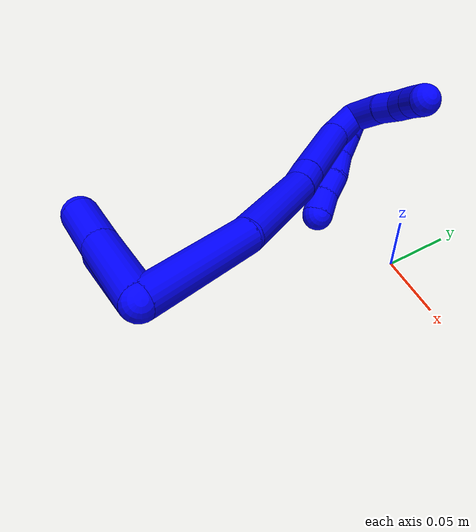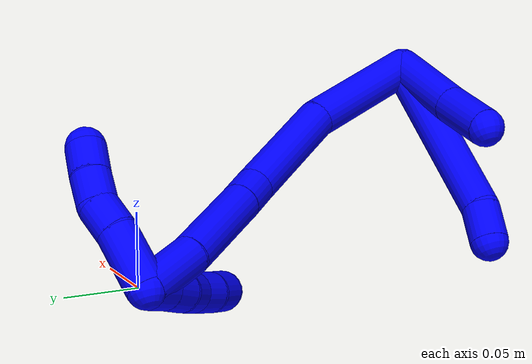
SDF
<sdf version="1.7">
 <world name="default">
  <model name="photoneo_s_sensor">
   <static>1</static>
   <pose>0 0 2 1.57079 1.57079 3.14159</pose>
   <link name="link">
    <inertial><mass>0.1</mass></inertial>
    <sensor name="sensor" type="depth">
     <update_rate>30</update_rate>
     <camera>
      <horizontal_fov>1.22</horizontal_fov>
      <image><width>1920</width><height>1200</height><format>B8G8R8</format></image>
      <clip><near>0.1</near><far>4</far></clip>
      <depth_camera><output>points</output></depth_camera>
     </camera>
     <plugin name="camera_plugin" filename="libgazebo_ros_depth_camera.so">
      <baseline>0.2</baseline>
      <alwaysOn>1</alwaysOn>
      <updateRate>0.0</updateRate>
      <cameraName>camera_ir</cameraName>
      <imageTopicName>/camera/color/image_raw</imageTopicName>
      <cameraInfoTopicName>/camera/color/camera_info</cameraInfoTopicName>
      <depthImageTopicName>/camera/depth/image_raw</depthImageTopicName>
      <depthImageCameraInfoTopicName>/camera/depth/camera_info</depthImageCameraInfoTopicName>
      <pointCloudTopicName>/camera/depth/points</pointCloudTopicName>
      <frameName>fr_optical</frameName>
      <pointCloudCutoff>0.1</pointCloudCutoff>
      <pointCloudCutoffMax>2.0</pointCloudCutoffMax>
      <distortionK1>0</distortionK1>
      <distortionK2>0</distortionK2>
      <distortionK3>0</distortionK3>
      <distortionT1>0</distortionT1>
      <distortionT2>0</distortionT2>
      <CxPrime>0</CxPrime>
      <Cx>0</Cx>
      <Cy>0</Cy>
      <focalLength>0</focalLength>
      <hackBaseline>0</hackBaseline>
     </plugin>
    </sensor>
   </link>
  </model>
  <model name="bin">
   <static>1</static>
   <link name="bottom">
    <collision name="collision-bottom">
     <pose>0 0 -0.01 0 -0 0</pose>
     <geometry><box><size>0.8 0.6 0.02</size></box></geometry>
     <surface>
      <friction><ode><mu>100</mu><mu2>100</mu2></ode></friction>
      <contact><collide_bitmask>65535</collide_bitmask></contact>
     </surface>
    </collision>
   </link>
   <link name="west_wall">
    <collision name="collision-west_wall">
     <pose>-0.41 0 0.1 0 -0 0</pose>
     <geometry><box><size>0.02 0.6 0.2</size></box></geometry>
     <surface>
      <friction><ode><mu>100</mu><mu2>100</mu2></ode></friction>
      <contact><collide_bitmask>65535</collide_bitmask></contact>
     </surface>
    </collision>
   </link>
   <link name="east_wall">
    <collision name="collision-east_wall">
     <pose>0.41 0 0.1 0 -0 0</pose>
     <geometry><box><size>0.02 0.6 0.2</size></box></geometry>
     <surface>
      <friction><ode><mu>100</mu><mu2>100</mu2></ode></friction>
      <contact><collide_bitmask>65535</collide_bitmask></contact>
     </surface>
    </collision>
   </link>
   <link name="south_wall">
    <collision name="collision-south_wall">
     <pose>0 -0.31 0.1 0 -0 0</pose>
     <geometry><box><size>0.8 0.02 0.2</size></box></geometry>
     <surface>
      <friction><ode><mu>100</mu><mu2>100</mu2></ode></friction>
      <contact><collide_bitmask>65535</collide_bitmask></contact>
     </surface>
    </collision>
   </link>
   <link name="north_wall">
    <collision name="collision-north_wall">
     <pose>0 0.31 0.1 0 -0 0</pose>
     <geometry><box><size>0.8 0.02 0.2</size></box></geometry>
     <surface>
      <friction><ode><mu>100</mu><mu2>100</mu2></ode></friction>
      <contact><collide_bitmask>65535</collide_bitmask></contact>
     </surface>
    </collision>
   </link>
  </model>
  <model name="1">
   <static>0</static>
   <link name="1">
    <collision name="collision-cylinder-e_1_2_8">
     <pose>-0.020503 -4.3e-05 -0.059467 3.14088 -0.332022 -3.13732</pose>
     <geometry><cylinder><radius>0.0125</radius><length>0.125804</length></cylinder></geometry>
     <surface>
      <friction><ode><mu>1.16</mu><mu2>1.16</mu2><slip1>0</slip1><slip2>0</slip2></ode></friction>
      <contact><ode><kp>1e+06</kp><kd>1</kd><max_vel>0</max_vel><min_depth>0.001</min_depth></ode></contact>
     </surface>
    </collision>
    <visual name="visual-cylinder-e_1_2_8">
     <pose>-0.020503 -4.3e-05 -0.059467 3.14088 -0.332022 -3.13732</pose>
     <geometry><cylinder><radius>0.0125</radius><length>0.125804</length></cylinder></geometry>
     <material><ambient>0 0 1 1</ambient></material>
    </visual>
    <collision name="collision-cylinder-e_2_8_6">
     <pose>-0.0425 0.001478 -0.130837 -3.01102 -0.123744 1.51695</pose>
     <geometry><cylinder><radius>0.0125</radius><length>0.024196</length></cylinder></geometry>
     <surface>
      <friction><ode><mu>1.16</mu><mu2>1.16</mu2><slip1>0</slip1><slip2>0</slip2></ode></friction>
      <contact><ode><kp>1e+06</kp><kd>1</kd><max_vel>0</max_vel><min_depth>0.001</min_depth></ode></contact>
     </surface>
    </collision>
    <visual name="visual-cylinder-e_2_8_6">
     <pose>-0.0425 0.001478 -0.130837 -3.01102 -0.123744 1.51695</pose>
     <geometry><cylinder><radius>0.0125</radius><length>0.024196</length></cylinder></geometry>
     <material><ambient>0 0 1 1</ambient></material>
    </visual>
    <collision name="collision-cylinder-e_1_2_9">
     <pose>-0.019879 -0.00167 -0.023151 3.06956 -0.708234 -2.94729</pose>
     <geometry><cylinder><radius>0.0125</radius><length>0.061121</length></cylinder></geometry>
     <surface>
      <friction><ode><mu>1.16</mu><mu2>1.16</mu2><slip1>0</slip1><slip2>0</slip2></ode></friction>
      <contact><ode><kp>1e+06</kp><kd>1</kd><max_vel>0</max_vel><min_depth>0.001</min_depth></ode></contact>
     </surface>
    </collision>
    <visual name="visual-cylinder-e_1_2_9">
     <pose>-0.019879 -0.00167 -0.023151 3.06956 -0.708234 -2.94729</pose>
     <geometry><cylinder><radius>0.0125</radius><length>0.061121</length></cylinder></geometry>
     <material><ambient>0 0 1 1</ambient></material>
    </visual>
    <collision name="collision-cylinder-e_2_9_5">
     <pose>-0.053195 -0.004271 -0.06032 3.07534 -0.7631 -2.97678</pose>
     <geometry><cylinder><radius>0.0125</radius><length>0.038879</length></cylinder></geometry>
     <surface>
      <friction><ode><mu>1.16</mu><mu2>1.16</mu2><slip1>0</slip1><slip2>0</slip2></ode></friction>
      <contact><ode><kp>1e+06</kp><kd>1</kd><max_vel>0</max_vel><min_depth>0.001</min_depth></ode></contact>
     </surface>
    </collision>
    <visual name="visual-cylinder-e_2_9_5">
     <pose>-0.053195 -0.004271 -0.06032 3.07534 -0.7631 -2.97678</pose>
     <geometry><cylinder><radius>0.0125</radius><length>0.038879</length></cylinder></geometry>
     <material><ambient>0 0 1 1</ambient></material>
    </visual>
    <collision name="collision-cylinder-e_1_2_10">
     <pose>-0.005545 0.040185 -0.017237 -1.97599 -0.126151 0.191046</pose>
     <geometry><cylinder><radius>0.0125</radius><length>0.088152</length></cylinder></geometry>
     <surface>
      <friction><ode><mu>1.16</mu><mu2>1.16</mu2><slip1>0</slip1><slip2>0</slip2></ode></friction>
      <contact><ode><kp>1e+06</kp><kd>1</kd><max_vel>0</max_vel><min_depth>0.001</min_depth></ode></contact>
     </surface>
    </collision>
    <visual name="visual-cylinder-e_1_2_10">
     <pose>-0.005545 0.040185 -0.017237 -1.97599 -0.126151 0.191046</pose>
     <geometry><cylinder><radius>0.0125</radius><length>0.088152</length></cylinder></geometry>
     <material><ambient>0 0 1 1</ambient></material>
    </visual>
    <collision name="collision-cylinder-e_2_10_11">
     <pose>-0.020604 0.112642 -0.057937 -2.19945 -0.234057 0.453717</pose>
     <geometry><cylinder><radius>0.0125</radius><length>0.082037</length></cylinder></geometry>
     <surface>
      <friction><ode><mu>1.16</mu><mu2>1.16</mu2><slip1>0</slip1><slip2>0</slip2></ode></friction>
      <contact><ode><kp>1e+06</kp><kd>1</kd><max_vel>0</max_vel><min_depth>0.001</min_depth></ode></contact>
     </surface>
    </collision>
    <visual name="visual-cylinder-e_2_10_11">
     <pose>-0.020604 0.112642 -0.057937 -2.19945 -0.234057 0.453717</pose>
     <geometry><cylinder><radius>0.0125</radius><length>0.082037</length></cylinder></geometry>
     <material><ambient>0 0 1 1</ambient></material>
    </visual>
    <collision name="collision-cylinder-e_3_11_12">
     <pose>-0.034095 0.15281 -0.087325 -2.21448 -0.383007 0.739968</pose>
     <geometry><cylinder><radius>0.0125</radius><length>0.021287</length></cylinder></geometry>
     <surface>
      <friction><ode><mu>1.16</mu><mu2>1.16</mu2><slip1>0</slip1><slip2>0</slip2></ode></friction>
      <contact><ode><kp>1e+06</kp><kd>1</kd><max_vel>0</max_vel><min_depth>0.001</min_depth></ode></contact>
     </surface>
    </collision>
    <visual name="visual-cylinder-e_3_11_12">
     <pose>-0.034095 0.15281 -0.087325 -2.21448 -0.383007 0.739968</pose>
     <geometry><cylinder><radius>0.0125</radius><length>0.021287</length></cylinder></geometry>
     <material><ambient>0 0 1 1</ambient></material>
    </visual>
    <collision name="collision-cylinder-e_4_12_13">
     <pose>-0.049864 0.186027 -0.111186 -2.18712 -0.363149 0.682331</pose>
     <geometry><cylinder><radius>0.0125</radius><length>0.066388</length></cylinder></geometry>
     <surface>
      <friction><ode><mu>1.16</mu><mu2>1.16</mu2><slip1>0</slip1><slip2>0</slip2></ode></friction>
      <contact><ode><kp>1e+06</kp><kd>1</kd><max_vel>0</max_vel><min_depth>0.001</min_depth></ode></contact>
     </surface>
    </collision>
    <visual name="visual-cylinder-e_4_12_13">
     <pose>-0.049864 0.186027 -0.111186 -2.18712 -0.363149 0.682331</pose>
     <geometry><cylinder><radius>0.0125</radius><length>0.066388</length></cylinder></geometry>
     <material><ambient>0 0 1 1</ambient></material>
    </visual>
    <collision name="collision-cylinder-e_5_13_1">
     <pose>-0.067723 0.229066 -0.13877 -2.06943 -0.292189 0.485562</pose>
     <geometry><cylinder><radius>0.0125</radius><length>0.042137</length></cylinder></geometry>
     <surface>
      <friction><ode><mu>1.16</mu><mu2>1.16</mu2><slip1>0</slip1><slip2>0</slip2></ode></friction>
      <contact><ode><kp>1e+06</kp><kd>1</kd><max_vel>0</max_vel><min_depth>0.001</min_depth></ode></contact>
     </surface>
    </collision>
    <visual name="visual-cylinder-e_5_13_1">
     <pose>-0.067723 0.229066 -0.13877 -2.06943 -0.292189 0.485562</pose>
     <geometry><cylinder><radius>0.0125</radius><length>0.042137</length></cylinder></geometry>
     <material><ambient>0 0 1 1</ambient></material>
    </visual>
    <collision name="collision-cylinder-e_1_1_14">
     <pose>-0.067252 0.239271 -0.147542 1.45471 0.712909 0.640131</pose>
     <geometry><cylinder><radius>0.0125</radius><length>0.02</length></cylinder></geometry>
     <surface>
      <friction><ode><mu>1.16</mu><mu2>1.16</mu2><slip1>0</slip1><slip2>0</slip2></ode></friction>
      <contact><ode><kp>1e+06</kp><kd>1</kd><max_vel>0</max_vel><min_depth>0.001</min_depth></ode></contact>
     </surface>
    </collision>
    <visual name="visual-cylinder-e_1_1_14">
     <pose>-0.067252 0.239271 -0.147542 1.45471 0.712909 0.640131</pose>
     <geometry><cylinder><radius>0.0125</radius><length>0.02</length></cylinder></geometry>
     <material><ambient>0 0 1 1</ambient></material>
    </visual>
    <collision name="collision-cylinder-e_2_14_15">
     <pose>-0.054228 0.224153 -0.146296 1.52216 0.705379 0.674415</pose>
     <geometry><cylinder><radius>0.0125</radius><length>0.02</length></cylinder></geometry>
     <surface>
      <friction><ode><mu>1.16</mu><mu2>1.16</mu2><slip1>0</slip1><slip2>0</slip2></ode></friction>
      <contact><ode><kp>1e+06</kp><kd>1</kd><max_vel>0</max_vel><min_depth>0.001</min_depth></ode></contact>
     </surface>
    </collision>
    <visual name="visual-cylinder-e_2_14_15">
     <pose>-0.054228 0.224153 -0.146296 1.52216 0.705379 0.674415</pose>
     <geometry><cylinder><radius>0.0125</radius><length>0.02</length></cylinder></geometry>
     <material><ambient>0 0 1 1</ambient></material>
    </visual>
    <collision name="collision-cylinder-e_3_15_16">
     <pose>-0.040201 0.21014 -0.144505 1.35267 0.854785 0.700954</pose>
     <geometry><cylinder><radius>0.0125</radius><length>0.02</length></cylinder></geometry>
     <surface>
      <friction><ode><mu>1.16</mu><mu2>1.16</mu2><slip1>0</slip1><slip2>0</slip2></ode></friction>
      <contact><ode><kp>1e+06</kp><kd>1</kd><max_vel>0</max_vel><min_depth>0.001</min_depth></ode></contact>
     </surface>
    </collision>
    <visual name="visual-cylinder-e_3_15_16">
     <pose>-0.040201 0.21014 -0.144505 1.35267 0.854785 0.700954</pose>
     <geometry><cylinder><radius>0.0125</radius><length>0.02</length></cylinder></geometry>
     <material><ambient>0 0 1 1</ambient></material>
    </visual>
    <collision name="collision-cylinder-e_4_16_17">
     <pose>-0.026773 0.19569 -0.14224 1.46604 0.628996 0.569836</pose>
     <geometry><cylinder><radius>0.0125</radius><length>0.02</length></cylinder></geometry>
     <surface>
      <friction><ode><mu>1.16</mu><mu2>1.16</mu2><slip1>0</slip1><slip2>0</slip2></ode></friction>
      <contact><ode><kp>1e+06</kp><kd>1</kd><max_vel>0</max_vel><min_depth>0.001</min_depth></ode></contact>
     </surface>
    </collision>
    <visual name="visual-cylinder-e_4_16_17">
     <pose>-0.026773 0.19569 -0.14224 1.46604 0.628996 0.569836</pose>
     <geometry><cylinder><radius>0.0125</radius><length>0.02</length></cylinder></geometry>
     <material><ambient>0 0 1 1</ambient></material>
    </visual>
    <collision name="collision-cylinder-e_5_17_4">
     <pose>-0.013996 0.180615 -0.139658 1.32876 0.760677 0.606877</pose>
     <geometry><cylinder><radius>0.0125</radius><length>0.02</length></cylinder></geometry>
     <surface>
      <friction><ode><mu>1.16</mu><mu2>1.16</mu2><slip1>0</slip1><slip2>0</slip2></ode></friction>
      <contact><ode><kp>1e+06</kp><kd>1</kd><max_vel>0</max_vel><min_depth>0.001</min_depth></ode></contact>
     </surface>
    </collision>
    <visual name="visual-cylinder-e_5_17_4">
     <pose>-0.013996 0.180615 -0.139658 1.32876 0.760677 0.606877</pose>
     <geometry><cylinder><radius>0.0125</radius><length>0.02</length></cylinder></geometry>
     <material><ambient>0 0 1 1</ambient></material>
    </visual>
    <collision name="collision-cylinder-e_1_1_18">
     <pose>-0.070276 0.25016 -0.129486 -0.17641 0.180846 -0.016036</pose>
     <geometry><cylinder><radius>0.0125</radius><length>0.0391</length></cylinder></geometry>
     <surface>
      <friction><ode><mu>1.16</mu><mu2>1.16</mu2><slip1>0</slip1><slip2>0</slip2></ode></friction>
      <contact><ode><kp>1e+06</kp><kd>1</kd><max_vel>0</max_vel><min_depth>0.001</min_depth></ode></contact>
     </surface>
    </collision>
    <visual name="visual-cylinder-e_1_1_18">
     <pose>-0.070276 0.25016 -0.129486 -0.17641 0.180846 -0.016036</pose>
     <geometry><cylinder><radius>0.0125</radius><length>0.0391</length></cylinder></geometry>
     <material><ambient>0 0 1 1</ambient></material>
    </visual>
    <collision name="collision-cylinder-e_2_18_19">
     <pose>-0.063811 0.256043 -0.101101 -0.259417 0.292885 -0.038475</pose>
     <geometry><cylinder><radius>0.0125</radius><length>0.020429</length></cylinder></geometry>
     <surface>
      <friction><ode><mu>1.16</mu><mu2>1.16</mu2><slip1>0</slip1><slip2>0</slip2></ode></friction>
      <contact><ode><kp>1e+06</kp><kd>1</kd><max_vel>0</max_vel><min_depth>0.001</min_depth></ode></contact>
     </surface>
    </collision>
    <visual name="visual-cylinder-e_2_18_19">
     <pose>-0.063811 0.256043 -0.101101 -0.259417 0.292885 -0.038475</pose>
     <geometry><cylinder><radius>0.0125</radius><length>0.020429</length></cylinder></geometry>
     <material><ambient>0 0 1 1</ambient></material>
    </visual>
    <collision name="collision-cylinder-e_3_19_20">
     <pose>-0.059001 0.257875 -0.081681 0.067759 0.184075 0.006256</pose>
     <geometry><cylinder><radius>0.0125</radius><length>0.020325</length></cylinder></geometry>
     <surface>
      <friction><ode><mu>1.16</mu><mu2>1.16</mu2><slip1>0</slip1><slip2>0</slip2></ode></friction>
      <contact><ode><kp>1e+06</kp><kd>1</kd><max_vel>0</max_vel><min_depth>0.001</min_depth></ode></contact>
     </surface>
    </collision>
    <visual name="visual-cylinder-e_3_19_20">
     <pose>-0.059001 0.257875 -0.081681 0.067759 0.184075 0.006256</pose>
     <geometry><cylinder><radius>0.0125</radius><length>0.020325</length></cylinder></geometry>
     <material><ambient>0 0 1 1</ambient></material>
    </visual>
    <collision name="collision-cylinder-e_4_20_3">
     <pose>-0.054936 0.255748 -0.061992 0.148131 0.220722 0.016444</pose>
     <geometry><cylinder><radius>0.0125</radius><length>0.020146</length></cylinder></geometry>
     <surface>
      <friction><ode><mu>1.16</mu><mu2>1.16</mu2><slip1>0</slip1><slip2>0</slip2></ode></friction>
      <contact><ode><kp>1e+06</kp><kd>1</kd><max_vel>0</max_vel><min_depth>0.001</min_depth></ode></contact>
     </surface>
    </collision>
    <visual name="visual-cylinder-e_4_20_3">
     <pose>-0.054936 0.255748 -0.061992 0.148131 0.220722 0.016444</pose>
     <geometry><cylinder><radius>0.0125</radius><length>0.020146</length></cylinder></geometry>
     <material><ambient>0 0 1 1</ambient></material>
    </visual>
    <collision name="collision-sphere-3">
     <pose>-0.05273 0.254298 -0.052271 0 -0 0</pose>
     <geometry><sphere><radius>0.0125</radius></sphere></geometry>
     <surface>
      <friction><ode><mu>1.16</mu><mu2>1.16</mu2><slip1>0</slip1><slip2>0</slip2></ode></friction>
      <contact><ode><kp>1e+06</kp><kd>1</kd><max_vel>0</max_vel><min_depth>0.001</min_depth></ode></contact>
     </surface>
    </collision>
    <visual name="visual-sphere-3">
     <pose>-0.05273 0.254298 -0.052271 0 -0 0</pose>
     <geometry><sphere><radius>0.0125</radius></sphere></geometry>
     <material><ambient>0 0 1 1</ambient></material>
    </visual>
    <collision name="collision-sphere-20">
     <pose>-0.057141 0.257199 -0.071713 0 -0 0</pose>
     <geometry><sphere><radius>0.0125</radius></sphere></geometry>
     <surface>
      <friction><ode><mu>1.16</mu><mu2>1.16</mu2><slip1>0</slip1><slip2>0</slip2></ode></friction>
      <contact><ode><kp>1e+06</kp><kd>1</kd><max_vel>0</max_vel><min_depth>0.001</min_depth></ode></contact>
     </surface>
    </collision>
    <visual name="visual-sphere-20">
     <pose>-0.057141 0.257199 -0.071713 0 -0 0</pose>
     <geometry><sphere><radius>0.0125</radius></sphere></geometry>
     <material><ambient>0 0 1 1</ambient></material>
    </visual>
    <collision name="collision-sphere-19">
     <pose>-0.060861 0.258552 -0.091649 0 -0 0</pose>
     <geometry><sphere><radius>0.0125</radius></sphere></geometry>
     <surface>
      <friction><ode><mu>1.16</mu><mu2>1.16</mu2><slip1>0</slip1><slip2>0</slip2></ode></friction>
      <contact><ode><kp>1e+06</kp><kd>1</kd><max_vel>0</max_vel><min_depth>0.001</min_depth></ode></contact>
     </surface>
    </collision>
    <visual name="visual-sphere-19">
     <pose>-0.060861 0.258552 -0.091649 0 -0 0</pose>
     <geometry><sphere><radius>0.0125</radius></sphere></geometry>
     <material><ambient>0 0 1 1</ambient></material>
    </visual>
    <collision name="collision-sphere-10">
     <pose>-0.011091 0.08037 -0.034473 0 -0 0</pose>
     <geometry><sphere><radius>0.0125</radius></sphere></geometry>
     <surface>
      <friction><ode><mu>1.16</mu><mu2>1.16</mu2><slip1>0</slip1><slip2>0</slip2></ode></friction>
      <contact><ode><kp>1e+06</kp><kd>1</kd><max_vel>0</max_vel><min_depth>0.001</min_depth></ode></contact>
     </surface>
    </collision>
    <visual name="visual-sphere-10">
     <pose>-0.011091 0.08037 -0.034473 0 -0 0</pose>
     <geometry><sphere><radius>0.0125</radius></sphere></geometry>
     <material><ambient>0 0 1 1</ambient></material>
    </visual>
    <collision name="collision-sphere-5">
     <pose>-0.066631 -0.005201 -0.074338 0 -0 0</pose>
     <geometry><sphere><radius>0.0125</radius></sphere></geometry>
     <surface>
      <friction><ode><mu>1.16</mu><mu2>1.16</mu2><slip1>0</slip1><slip2>0</slip2></ode></friction>
      <contact><ode><kp>1e+06</kp><kd>1</kd><max_vel>0</max_vel><min_depth>0.001</min_depth></ode></contact>
     </surface>
    </collision>
    <visual name="visual-sphere-5">
     <pose>-0.066631 -0.005201 -0.074338 0 -0 0</pose>
     <geometry><sphere><radius>0.0125</radius></sphere></geometry>
     <material><ambient>0 0 1 1</ambient></material>
    </visual>
    <collision name="collision-sphere-6">
     <pose>-0.043993 0.003041 -0.14274 0 -0 0</pose>
     <geometry><sphere><radius>0.0125</radius></sphere></geometry>
     <surface>
      <friction><ode><mu>1.16</mu><mu2>1.16</mu2><slip1>0</slip1><slip2>0</slip2></ode></friction>
      <contact><ode><kp>1e+06</kp><kd>1</kd><max_vel>0</max_vel><min_depth>0.001</min_depth></ode></contact>
     </surface>
    </collision>
    <visual name="visual-sphere-6">
     <pose>-0.043993 0.003041 -0.14274 0 -0 0</pose>
     <geometry><sphere><radius>0.0125</radius></sphere></geometry>
     <material><ambient>0 0 1 1</ambient></material>
    </visual>
    <collision name="collision-sphere-9">
     <pose>-0.039759 -0.003341 -0.046302 0 -0 0</pose>
     <geometry><sphere><radius>0.0125</radius></sphere></geometry>
     <surface>
      <friction><ode><mu>1.16</mu><mu2>1.16</mu2><slip1>0</slip1><slip2>0</slip2></ode></friction>
      <contact><ode><kp>1e+06</kp><kd>1</kd><max_vel>0</max_vel><min_depth>0.001</min_depth></ode></contact>
     </surface>
    </collision>
    <visual name="visual-sphere-9">
     <pose>-0.039759 -0.003341 -0.046302 0 -0 0</pose>
     <geometry><sphere><radius>0.0125</radius></sphere></geometry>
     <material><ambient>0 0 1 1</ambient></material>
    </visual>
    <collision name="collision-sphere-2">
     <geometry><sphere><radius>0.0125</radius></sphere></geometry>
     <surface>
      <friction><ode><mu>1.16</mu><mu2>1.16</mu2><slip1>0</slip1><slip2>0</slip2></ode></friction>
      <contact><ode><kp>1e+06</kp><kd>1</kd><max_vel>0</max_vel><min_depth>0.001</min_depth></ode></contact>
     </surface>
    </collision>
    <visual name="visual-sphere-2">
     <geometry><sphere><radius>0.0125</radius></sphere></geometry>
     <material><ambient>0 0 1 1</ambient></material>
    </visual>
    <collision name="collision-sphere-8">
     <pose>-0.041007 -8.5e-05 -0.118933 0 -0 0</pose>
     <geometry><sphere><radius>0.0125</radius></sphere></geometry>
     <surface>
      <friction><ode><mu>1.16</mu><mu2>1.16</mu2><slip1>0</slip1><slip2>0</slip2></ode></friction>
      <contact><ode><kp>1e+06</kp><kd>1</kd><max_vel>0</max_vel><min_depth>0.001</min_depth></ode></contact>
     </surface>
    </collision>
    <visual name="visual-sphere-8">
     <pose>-0.041007 -8.5e-05 -0.118933 0 -0 0</pose>
     <geometry><sphere><radius>0.0125</radius></sphere></geometry>
     <material><ambient>0 0 1 1</ambient></material>
    </visual>
    <collision name="collision-sphere-11">
     <pose>-0.030117 0.144914 -0.0814 0 -0 0</pose>
     <geometry><sphere><radius>0.0125</radius></sphere></geometry>
     <surface>
      <friction><ode><mu>1.16</mu><mu2>1.16</mu2><slip1>0</slip1><slip2>0</slip2></ode></friction>
      <contact><ode><kp>1e+06</kp><kd>1</kd><max_vel>0</max_vel><min_depth>0.001</min_depth></ode></contact>
     </surface>
    </collision>
    <visual name="visual-sphere-11">
     <pose>-0.030117 0.144914 -0.0814 0 -0 0</pose>
     <geometry><sphere><radius>0.0125</radius></sphere></geometry>
     <material><ambient>0 0 1 1</ambient></material>
    </visual>
    <collision name="collision-sphere-12">
     <pose>-0.038072 0.160707 -0.09325 0 -0 0</pose>
     <geometry><sphere><radius>0.0125</radius></sphere></geometry>
     <surface>
      <friction><ode><mu>1.16</mu><mu2>1.16</mu2><slip1>0</slip1><slip2>0</slip2></ode></friction>
      <contact><ode><kp>1e+06</kp><kd>1</kd><max_vel>0</max_vel><min_depth>0.001</min_depth></ode></contact>
     </surface>
    </collision>
    <visual name="visual-sphere-12">
     <pose>-0.038072 0.160707 -0.09325 0 -0 0</pose>
     <geometry><sphere><radius>0.0125</radius></sphere></geometry>
     <material><ambient>0 0 1 1</ambient></material>
    </visual>
    <collision name="collision-sphere-13">
     <pose>-0.061655 0.211347 -0.129122 0 -0 0</pose>
     <geometry><sphere><radius>0.0125</radius></sphere></geometry>
     <surface>
      <friction><ode><mu>1.16</mu><mu2>1.16</mu2><slip1>0</slip1><slip2>0</slip2></ode></friction>
      <contact><ode><kp>1e+06</kp><kd>1</kd><max_vel>0</max_vel><min_depth>0.001</min_depth></ode></contact>
     </surface>
    </collision>
    <visual name="visual-sphere-13">
     <pose>-0.061655 0.211347 -0.129122 0 -0 0</pose>
     <geometry><sphere><radius>0.0125</radius></sphere></geometry>
     <material><ambient>0 0 1 1</ambient></material>
    </visual>
    <collision name="collision-sphere-1">
     <pose>-0.073792 0.246785 -0.148419 0 -0 0</pose>
     <geometry><sphere><radius>0.0125</radius></sphere></geometry>
     <surface>
      <friction><ode><mu>1.16</mu><mu2>1.16</mu2><slip1>0</slip1><slip2>0</slip2></ode></friction>
      <contact><ode><kp>1e+06</kp><kd>1</kd><max_vel>0</max_vel><min_depth>0.001</min_depth></ode></contact>
     </surface>
    </collision>
    <visual name="visual-sphere-1">
     <pose>-0.073792 0.246785 -0.148419 0 -0 0</pose>
     <geometry><sphere><radius>0.0125</radius></sphere></geometry>
     <material><ambient>0 0 1 1</ambient></material>
    </visual>
    <collision name="collision-sphere-18">
     <pose>-0.06676 0.253535 -0.110553 0 -0 0</pose>
     <geometry><sphere><radius>0.0125</radius></sphere></geometry>
     <surface>
      <friction><ode><mu>1.16</mu><mu2>1.16</mu2><slip1>0</slip1><slip2>0</slip2></ode></friction>
      <contact><ode><kp>1e+06</kp><kd>1</kd><max_vel>0</max_vel><min_depth>0.001</min_depth></ode></contact>
     </surface>
    </collision>
    <visual name="visual-sphere-18">
     <pose>-0.06676 0.253535 -0.110553 0 -0 0</pose>
     <geometry><sphere><radius>0.0125</radius></sphere></geometry>
     <material><ambient>0 0 1 1</ambient></material>
    </visual>
    <collision name="collision-sphere-14">
     <pose>-0.060711 0.231757 -0.146666 0 -0 0</pose>
     <geometry><sphere><radius>0.0125</radius></sphere></geometry>
     <surface>
      <friction><ode><mu>1.16</mu><mu2>1.16</mu2><slip1>0</slip1><slip2>0</slip2></ode></friction>
      <contact><ode><kp>1e+06</kp><kd>1</kd><max_vel>0</max_vel><min_depth>0.001</min_depth></ode></contact>
     </surface>
    </collision>
    <visual name="visual-sphere-14">
     <pose>-0.060711 0.231757 -0.146666 0 -0 0</pose>
     <geometry><sphere><radius>0.0125</radius></sphere></geometry>
     <material><ambient>0 0 1 1</ambient></material>
    </visual>
    <collision name="collision-sphere-15">
     <pose>-0.047745 0.216548 -0.145926 0 -0 0</pose>
     <geometry><sphere><radius>0.0125</radius></sphere></geometry>
     <surface>
      <friction><ode><mu>1.16</mu><mu2>1.16</mu2><slip1>0</slip1><slip2>0</slip2></ode></friction>
      <contact><ode><kp>1e+06</kp><kd>1</kd><max_vel>0</max_vel><min_depth>0.001</min_depth></ode></contact>
     </surface>
    </collision>
    <visual name="visual-sphere-15">
     <pose>-0.047745 0.216548 -0.145926 0 -0 0</pose>
     <geometry><sphere><radius>0.0125</radius></sphere></geometry>
     <material><ambient>0 0 1 1</ambient></material>
    </visual>
    <collision name="collision-sphere-16">
     <pose>-0.032656 0.203731 -0.143085 0 -0 0</pose>
     <geometry><sphere><radius>0.0125</radius></sphere></geometry>
     <surface>
      <friction><ode><mu>1.16</mu><mu2>1.16</mu2><slip1>0</slip1><slip2>0</slip2></ode></friction>
      <contact><ode><kp>1e+06</kp><kd>1</kd><max_vel>0</max_vel><min_depth>0.001</min_depth></ode></contact>
     </surface>
    </collision>
    <visual name="visual-sphere-16">
     <pose>-0.032656 0.203731 -0.143085 0 -0 0</pose>
     <geometry><sphere><radius>0.0125</radius></sphere></geometry>
     <material><ambient>0 0 1 1</ambient></material>
    </visual>
    <collision name="collision-sphere-17">
     <pose>-0.02089 0.187648 -0.141394 0 -0 0</pose>
     <geometry><sphere><radius>0.0125</radius></sphere></geometry>
     <surface>
      <friction><ode><mu>1.16</mu><mu2>1.16</mu2><slip1>0</slip1><slip2>0</slip2></ode></friction>
      <contact><ode><kp>1e+06</kp><kd>1</kd><max_vel>0</max_vel><min_depth>0.001</min_depth></ode></contact>
     </surface>
    </collision>
    <visual name="visual-sphere-17">
     <pose>-0.02089 0.187648 -0.141394 0 -0 0</pose>
     <geometry><sphere><radius>0.0125</radius></sphere></geometry>
     <material><ambient>0 0 1 1</ambient></material>
    </visual>
    <collision name="collision-sphere-4">
     <pose>-0.007101 0.173583 -0.137922 0 -0 0</pose>
     <geometry><sphere><radius>0.0125</radius></sphere></geometry>
     <surface>
      <friction><ode><mu>1.16</mu><mu2>1.16</mu2><slip1>0</slip1><slip2>0</slip2></ode></friction>
      <contact><ode><kp>1e+06</kp><kd>1</kd><max_vel>0</max_vel><min_depth>0.001</min_depth></ode></contact>
     </surface>
    </collision>
    <visual name="visual-sphere-4">
     <pose>-0.007101 0.173583 -0.137922 0 -0 0</pose>
     <geometry><sphere><radius>0.0125</radius></sphere></geometry>
     <material><ambient>0 0 1 1</ambient></material>
    </visual>
    <inertial>
     <pose>-0.035155 0.112271 -0.080279 0 -0 0</pose>
     <mass>0.75</mass>
     <inertia><ixx>8e-06</ixx><ixy>0</ixy><ixz>0</ixz><iyy>0.000226</iyy><iyz>0</iyz><izz>-3.8e-05</izz></inertia>
    </inertial>
   </link>
   <pose>0.019826 -0.201717 0.124009 -0.016597 0.595963 -0.007305</pose>
  </model>
 </world>
</sdf>
